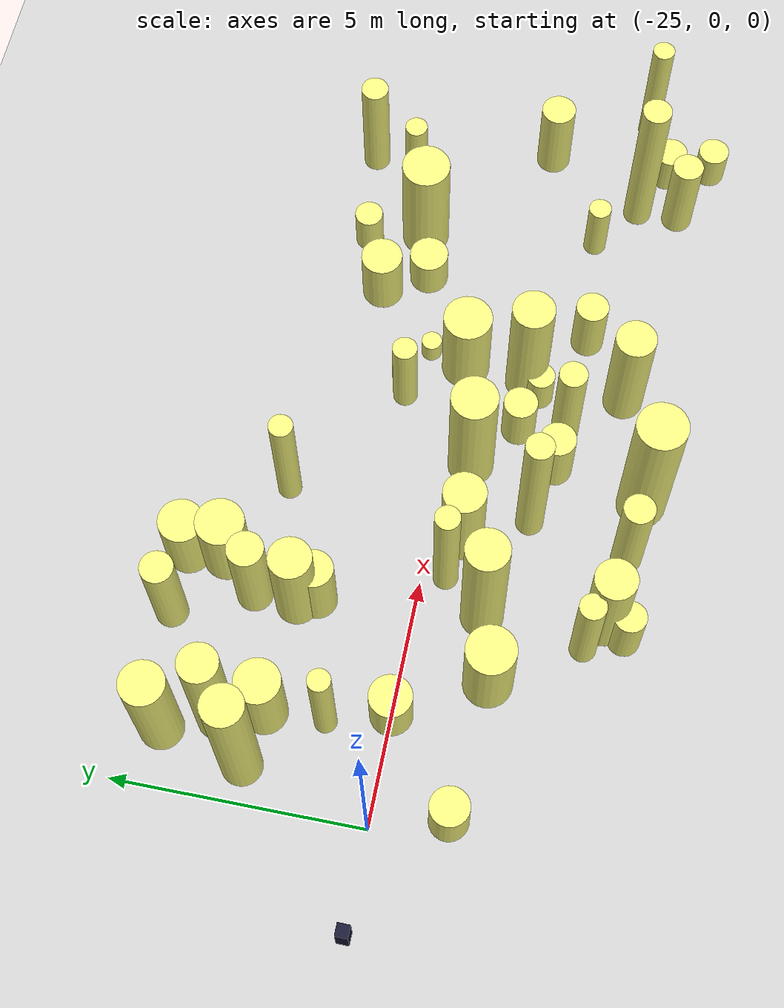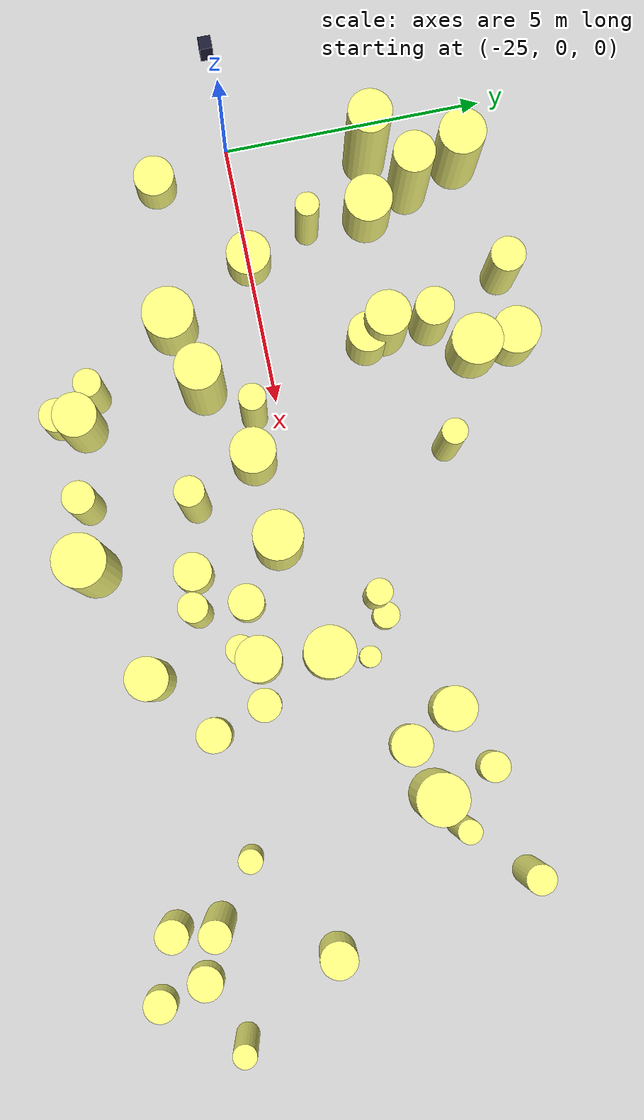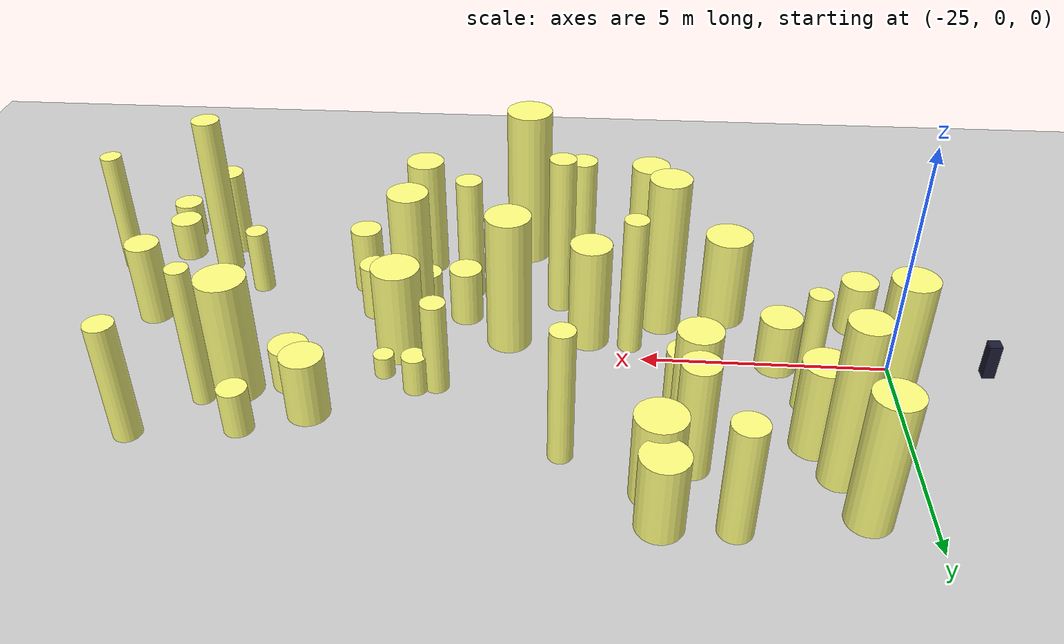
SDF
<sdf version="1.4">
 <world name="default">
  <include><uri>model://ground_plane</uri></include>
  <include><uri>model://sun</uri></include>
  <model name="forest">
   <static>true</static>
   <link name="cylinder1">
    <pose>-17.237339600972607 -0.5002070811042465 1.5118524526197255 0 0 0</pose>
    <visual name="visual">
     <geometry>
      <cylinder><radius>0.46677832788261603</radius><length>3.023704905239451</length></cylinder>
     </geometry>
     <material>
      <ambient>0.6 0.6 0.6 1</ambient>
      <diffuse>1 1 0.5 1</diffuse>
      <specular>0 0 0</specular>
      <emissive>0 0 0 1</emissive>
     </material>
    </visual>
    <collision name="collision">
     <geometry>
      <cylinder><radius>0.46677832788261603</radius><length>3.023704905239451</length></cylinder>
     </geometry>
     <max_contacts>0</max_contacts>
    </collision>
   </link>
   <link name="cylinder5">
    <pose>-20.148803861511887 -3.700949633133399 1.2790488330245817 0 0 0</pose>
    <visual name="visual">
     <geometry>
      <cylinder><radius>0.4170050183967076</radius><length>2.5580976660491634</length></cylinder>
     </geometry>
     <material>
      <ambient>0.6 0.6 0.6 1</ambient>
      <diffuse>1 1 0.5 1</diffuse>
      <specular>0 0 0</specular>
      <emissive>0 0 0 1</emissive>
     </material>
    </visual>
    <collision name="collision">
     <geometry>
      <cylinder><radius>0.4170050183967076</radius><length>2.5580976660491634</length></cylinder>
     </geometry>
     <max_contacts>0</max_contacts>
    </collision>
   </link>
   <link name="cylinder6">
    <pose>-8.282217289233344 -2.8858835329131693 1.393991411430147 0 0 0</pose>
    <visual name="visual">
     <geometry>
      <cylinder><radius>0.2251886929722567</radius><length>2.787982822860294</length></cylinder>
     </geometry>
     <material>
      <ambient>0.6 0.6 0.6 1</ambient>
      <diffuse>1 1 0.5 1</diffuse>
      <specular>0 0 0</specular>
      <emissive>0 0 0 1</emissive>
     </material>
    </visual>
    <collision name="collision">
     <geometry>
      <cylinder><radius>0.2251886929722567</radius><length>2.787982822860294</length></cylinder>
     </geometry>
     <max_contacts>0</max_contacts>
    </collision>
   </link>
   <link name="cylinder8">
    <pose>-18.899742258552887 -0.6405329994121258 1.1736366769516815 0 0 0</pose>
    <visual name="visual">
     <geometry>
      <cylinder><radius>0.4303406056270836</radius><length>2.347273353903363</length></cylinder>
     </geometry>
     <material>
      <ambient>0.6 0.6 0.6 1</ambient>
      <diffuse>1 1 0.5 1</diffuse>
      <specular>0 0 0</specular>
      <emissive>0 0 0 1</emissive>
     </material>
    </visual>
    <collision name="collision">
     <geometry>
      <cylinder><radius>0.4303406056270836</radius><length>2.347273353903363</length></cylinder>
     </geometry>
     <max_contacts>0</max_contacts>
    </collision>
   </link>
   <link name="cylinder15">
    <pose>-12.01330068813229 1.4757289131431541 1.3220157545991622 0 0 0</pose>
    <visual name="visual">
     <geometry>
      <cylinder><radius>0.49491867467201395</radius><length>2.6440315091983244</length></cylinder>
     </geometry>
     <material>
      <ambient>0.6 0.6 0.6 1</ambient>
      <diffuse>1 1 0.5 1</diffuse>
      <specular>0 0 0</specular>
      <emissive>0 0 0 1</emissive>
     </material>
    </visual>
    <collision name="collision">
     <geometry>
      <cylinder><radius>0.49491867467201395</radius><length>2.6440315091983244</length></cylinder>
     </geometry>
     <max_contacts>0</max_contacts>
    </collision>
   </link>
   <link name="cylinder16">
    <pose>-23.48727687036992 3.24876843397006 1.731877221561158 0 0 0</pose>
    <visual name="visual">
     <geometry>
      <cylinder><radius>0.3859166150230648</radius><length>3.463754443122316</length></cylinder>
     </geometry>
     <material>
      <ambient>0.6 0.6 0.6 1</ambient>
      <diffuse>1 1 0.5 1</diffuse>
      <specular>0 0 0</specular>
      <emissive>0 0 0 1</emissive>
     </material>
    </visual>
    <collision name="collision">
     <geometry>
      <cylinder><radius>0.3859166150230648</radius><length>3.463754443122316</length></cylinder>
     </geometry>
     <max_contacts>0</max_contacts>
    </collision>
   </link>
   <link name="cylinder21">
    <pose>-24.537377630705997 -1.4602951554506962 0.5840869932758881 0 0 0</pose>
    <visual name="visual">
     <geometry>
      <cylinder><radius>0.3863408214898202</radius><length>1.1681739865517762</length></cylinder>
     </geometry>
     <material>
      <ambient>0.6 0.6 0.6 1</ambient>
      <diffuse>1 1 0.5 1</diffuse>
      <specular>0 0 0</specular>
      <emissive>0 0 0 1</emissive>
     </material>
    </visual>
    <collision name="collision">
     <geometry>
      <cylinder><radius>0.3863408214898202</radius><length>1.1681739865517762</length></cylinder>
     </geometry>
     <max_contacts>0</max_contacts>
    </collision>
   </link>
   <link name="cylinder22">
    <pose>-21.75738890126337 -1.6847261504267097 1.016730140741591 0 0 0</pose>
    <visual name="visual">
     <geometry>
      <cylinder><radius>0.4917726904729416</radius><length>2.033460281483182</length></cylinder>
     </geometry>
     <material>
      <ambient>0.6 0.6 0.6 1</ambient>
      <diffuse>1 1 0.5 1</diffuse>
      <specular>0 0 0</specular>
      <emissive>0 0 0 1</emissive>
     </material>
    </visual>
    <collision name="collision">
     <geometry>
      <cylinder><radius>0.4917726904729416</radius><length>2.033460281483182</length></cylinder>
     </geometry>
     <max_contacts>0</max_contacts>
    </collision>
   </link>
   <link name="cylinder23">
    <pose>-15.410332753393396 -1.5987368802015167 0.46426440466343477 0 0 0</pose>
    <visual name="visual">
     <geometry>
      <cylinder><radius>0.2857012675479296</radius><length>0.9285288093268695</length></cylinder>
     </geometry>
     <material>
      <ambient>0.6 0.6 0.6 1</ambient>
      <diffuse>1 1 0.5 1</diffuse>
      <specular>0 0 0</specular>
      <emissive>0 0 0 1</emissive>
     </material>
    </visual>
    <collision name="collision">
     <geometry>
      <cylinder><radius>0.2857012675479296</radius><length>0.9285288093268695</length></cylinder>
     </geometry>
     <max_contacts>0</max_contacts>
    </collision>
   </link>
   <link name="cylinder24">
    <pose>-18.463321688392135 2.998894901509825 1.4334425518272613 0 0 0</pose>
    <visual name="visual">
     <geometry>
      <cylinder><radius>0.24127743343678415</radius><length>2.8668851036545226</length></cylinder>
     </geometry>
     <material>
      <ambient>0.6 0.6 0.6 1</ambient>
      <diffuse>1 1 0.5 1</diffuse>
      <specular>0 0 0</specular>
      <emissive>0 0 0 1</emissive>
     </material>
    </visual>
    <collision name="collision">
     <geometry>
      <cylinder><radius>0.24127743343678415</radius><length>2.8668851036545226</length></cylinder>
     </geometry>
     <max_contacts>0</max_contacts>
    </collision>
   </link>
   <link name="cylinder25">
    <pose>-14.300868841691312 -1.3497583953102374 0.6158416776750282 0 0 0</pose>
    <visual name="visual">
     <geometry>
      <cylinder><radius>0.32138493862074013</radius><length>1.2316833553500564</length></cylinder>
     </geometry>
     <material>
      <ambient>0.6 0.6 0.6 1</ambient>
      <diffuse>1 1 0.5 1</diffuse>
      <specular>0 0 0</specular>
      <emissive>0 0 0 1</emissive>
     </material>
    </visual>
    <collision name="collision">
     <geometry>
      <cylinder><radius>0.32138493862074013</radius><length>1.2316833553500564</length></cylinder>
     </geometry>
     <max_contacts>0</max_contacts>
    </collision>
   </link>
   <link name="cylinder27">
    <pose>-11.537661089453561 -2.1665147095185358 0.7244477340062326 0 0 0</pose>
    <visual name="visual">
     <geometry>
      <cylinder><radius>0.23354316422735868</radius><length>1.4488954680124653</length></cylinder>
     </geometry>
     <material>
      <ambient>0.6 0.6 0.6 1</ambient>
      <diffuse>1 1 0.5 1</diffuse>
      <specular>0 0 0</specular>
      <emissive>0 0 0 1</emissive>
     </material>
    </visual>
    <collision name="collision">
     <geometry>
      <cylinder><radius>0.23354316422735868</radius><length>1.4488954680124653</length></cylinder>
     </geometry>
     <max_contacts>0</max_contacts>
    </collision>
   </link>
   <link name="cylinder38">
    <pose>-11.38642349813843 1.8052967436921499 1.5200985591942313 0 0 0</pose>
    <visual name="visual">
     <geometry>
      <cylinder><radius>0.22462556854759153</radius><length>3.0401971183884626</length></cylinder>
     </geometry>
     <material>
      <ambient>0.6 0.6 0.6 1</ambient>
      <diffuse>1 1 0.5 1</diffuse>
      <specular>0 0 0</specular>
      <emissive>0 0 0 1</emissive>
     </material>
    </visual>
    <collision name="collision">
     <geometry>
      <cylinder><radius>0.22462556854759153</radius><length>3.0401971183884626</length></cylinder>
     </geometry>
     <max_contacts>0</max_contacts>
    </collision>
   </link>
   <link name="cylinder45">
    <pose>-17.436922142166374 -4.038939459190089 1.8130169733389931 0 0 0</pose>
    <visual name="visual">
     <geometry>
      <cylinder><radius>0.498983910959908</radius><length>3.6260339466779863</length></cylinder>
     </geometry>
     <material>
      <ambient>0.6 0.6 0.6 1</ambient>
      <diffuse>1 1 0.5 1</diffuse>
      <specular>0 0 0</specular>
      <emissive>0 0 0 1</emissive>
     </material>
    </visual>
    <collision name="collision">
     <geometry>
      <cylinder><radius>0.498983910959908</radius><length>3.6260339466779863</length></cylinder>
     </geometry>
     <max_contacts>0</max_contacts>
    </collision>
   </link>
   <link name="cylinder47">
    <pose>-9.488001945957015 -0.9172338314719717 0.9083555281805161 0 0 0</pose>
    <visual name="visual">
     <geometry>
      <cylinder><radius>0.3570390345416714</radius><length>1.8167110563610323</length></cylinder>
     </geometry>
     <material>
      <ambient>0.6 0.6 0.6 1</ambient>
      <diffuse>1 1 0.5 1</diffuse>
      <specular>0 0 0</specular>
      <emissive>0 0 0 1</emissive>
     </material>
    </visual>
    <collision name="collision">
     <geometry>
      <cylinder><radius>0.3570390345416714</radius><length>1.8167110563610323</length></cylinder>
     </geometry>
     <max_contacts>0</max_contacts>
    </collision>
   </link>
   <link name="cylinder48">
    <pose>-9.19745577396438 -4.3574099252883824 0.4262601787624855 0 0 0</pose>
    <visual name="visual">
     <geometry>
      <cylinder><radius>0.3205312203798536</radius><length>0.852520357524971</length></cylinder>
     </geometry>
     <material>
      <ambient>0.6 0.6 0.6 1</ambient>
      <diffuse>1 1 0.5 1</diffuse>
      <specular>0 0 0</specular>
      <emissive>0 0 0 1</emissive>
     </material>
    </visual>
    <collision name="collision">
     <geometry>
      <cylinder><radius>0.3205312203798536</radius><length>0.852520357524971</length></cylinder>
     </geometry>
     <max_contacts>0</max_contacts>
    </collision>
   </link>
   <link name="cylinder50">
    <pose>-20.8830408254851 2.283387764054501 1.2281981433649296 0 0 0</pose>
    <visual name="visual">
     <geometry>
      <cylinder><radius>0.42596792324083055</radius><length>2.456396286729859</length></cylinder>
     </geometry>
     <material>
      <ambient>0.6 0.6 0.6 1</ambient>
      <diffuse>1 1 0.5 1</diffuse>
      <specular>0 0 0</specular>
      <emissive>0 0 0 1</emissive>
     </material>
    </visual>
    <collision name="collision">
     <geometry>
      <cylinder><radius>0.42596792324083055</radius><length>2.456396286729859</length></cylinder>
     </geometry>
     <max_contacts>0</max_contacts>
    </collision>
   </link>
   <link name="cylinder57">
    <pose>-15.513438105112614 1.2278613242603136 0.40785494889892826 0 0 0</pose>
    <visual name="visual">
     <geometry>
      <cylinder><radius>0.25544507673638867</radius><length>0.8157098977978565</length></cylinder>
     </geometry>
     <material>
      <ambient>0.6 0.6 0.6 1</ambient>
      <diffuse>1 1 0.5 1</diffuse>
      <specular>0 0 0</specular>
      <emissive>0 0 0 1</emissive>
     </material>
    </visual>
    <collision name="collision">
     <geometry>
      <cylinder><radius>0.25544507673638867</radius><length>0.8157098977978565</length></cylinder>
     </geometry>
     <max_contacts>0</max_contacts>
    </collision>
   </link>
   <link name="cylinder58">
    <pose>-14.810555365355022 0.7895955618574657 0.24189875727437865 0 0 0</pose>
    <visual name="visual">
     <geometry>
      <cylinder><radius>0.20906370584355957</radius><length>0.4837975145487573</length></cylinder>
     </geometry>
     <material>
      <ambient>0.6 0.6 0.6 1</ambient>
      <diffuse>1 1 0.5 1</diffuse>
      <specular>0 0 0</specular>
      <emissive>0 0 0 1</emissive>
     </material>
    </visual>
    <collision name="collision">
     <geometry>
      <cylinder><radius>0.20906370584355957</radius><length>0.4837975145487573</length></cylinder>
     </geometry>
     <max_contacts>0</max_contacts>
    </collision>
   </link>
   <link name="cylinder59">
    <pose>-24.262080580485474 2.5780756254650044 1.9414825914702964 0 0 0</pose>
    <visual name="visual">
     <geometry>
      <cylinder><radius>0.4035563122428887</radius><length>3.882965182940593</length></cylinder>
     </geometry>
     <material>
      <ambient>0.6 0.6 0.6 1</ambient>
      <diffuse>1 1 0.5 1</diffuse>
      <specular>0 0 0</specular>
      <emissive>0 0 0 1</emissive>
     </material>
    </visual>
    <collision name="collision">
     <geometry>
      <cylinder><radius>0.4035563122428887</radius><length>3.882965182940593</length></cylinder>
     </geometry>
     <max_contacts>0</max_contacts>
    </collision>
   </link>
   <link name="cylinder62">
    <pose>-20.72868564199508 1.9059651147502112 0.8606134711768242 0 0 0</pose>
    <visual name="visual">
     <geometry>
      <cylinder><radius>0.3852916599648989</radius><length>1.7212269423536484</length></cylinder>
     </geometry>
     <material>
      <ambient>0.6 0.6 0.6 1</ambient>
      <diffuse>1 1 0.5 1</diffuse>
      <specular>0 0 0</specular>
      <emissive>0 0 0 1</emissive>
     </material>
    </visual>
    <collision name="collision">
     <geometry>
      <cylinder><radius>0.3852916599648989</radius><length>1.7212269423536484</length></cylinder>
     </geometry>
     <max_contacts>0</max_contacts>
    </collision>
   </link>
   <link name="cylinder63">
    <pose>-15.022772718436128 0.02190572271629243 1.035968711681472 0 0 0</pose>
    <visual name="visual">
     <geometry>
      <cylinder><radius>0.4952670084634616</radius><length>2.071937423362944</length></cylinder>
     </geometry>
     <material>
      <ambient>0.6 0.6 0.6 1</ambient>
      <diffuse>1 1 0.5 1</diffuse>
      <specular>0 0 0</specular>
      <emissive>0 0 0 1</emissive>
     </material>
    </visual>
    <collision name="collision">
     <geometry>
      <cylinder><radius>0.4952670084634616</radius><length>2.071937423362944</length></cylinder>
     </geometry>
     <max_contacts>0</max_contacts>
    </collision>
   </link>
   <link name="cylinder64">
    <pose>-13.54979081818583 2.1038303310756623 0.6987976968159539 0 0 0</pose>
    <visual name="visual">
     <geometry>
      <cylinder><radius>0.42614444110148797</radius><length>1.3975953936319079</length></cylinder>
     </geometry>
     <material>
      <ambient>0.6 0.6 0.6 1</ambient>
      <diffuse>1 1 0.5 1</diffuse>
      <specular>0 0 0</specular>
      <emissive>0 0 0 1</emissive>
     </material>
    </visual>
    <collision name="collision">
     <geometry>
      <cylinder><radius>0.42614444110148797</radius><length>1.3975953936319079</length></cylinder>
     </geometry>
     <max_contacts>0</max_contacts>
    </collision>
   </link>
   <link name="cylinder67">
    <pose>-20.42855529650008 -1.3215768000717576 1.7597092344462273 0 0 0</pose>
    <visual name="visual">
     <geometry>
      <cylinder><radius>0.42798806121495264</radius><length>3.5194184688924546</length></cylinder>
     </geometry>
     <material>
      <ambient>0.6 0.6 0.6 1</ambient>
      <diffuse>1 1 0.5 1</diffuse>
      <specular>0 0 0</specular>
      <emissive>0 0 0 1</emissive>
     </material>
    </visual>
    <collision name="collision">
     <geometry>
      <cylinder><radius>0.42798806121495264</radius><length>3.5194184688924546</length></cylinder>
     </geometry>
     <max_contacts>0</max_contacts>
    </collision>
   </link>
   <link name="cylinder69">
    <pose>-18.26102557763499 -1.8956662297669413 1.7904086044783356 0 0 0</pose>
    <visual name="visual">
     <geometry>
      <cylinder><radius>0.2803412955227197</radius><length>3.580817208956671</length></cylinder>
     </geometry>
     <material>
      <ambient>0.6 0.6 0.6 1</ambient>
      <diffuse>1 1 0.5 1</diffuse>
      <specular>0 0 0</specular>
      <emissive>0 0 0 1</emissive>
     </material>
    </visual>
    <collision name="collision">
     <geometry>
      <cylinder><radius>0.2803412955227197</radius><length>3.580817208956671</length></cylinder>
     </geometry>
     <max_contacts>0</max_contacts>
    </collision>
   </link>
   <link name="cylinder74">
    <pose>-20.702714968685665 -3.374078118057521 1.2034732354549333 0 0 0</pose>
    <visual name="visual">
     <geometry>
      <cylinder><radius>0.2649725305576209</radius><length>2.4069464709098667</length></cylinder>
     </geometry>
     <material>
      <ambient>0.6 0.6 0.6 1</ambient>
      <diffuse>1 1 0.5 1</diffuse>
      <specular>0 0 0</specular>
      <emissive>0 0 0 1</emissive>
     </material>
    </visual>
    <collision name="collision">
     <geometry>
      <cylinder><radius>0.2649725305576209</radius><length>2.4069464709098667</length></cylinder>
     </geometry>
     <max_contacts>0</max_contacts>
    </collision>
   </link>
   <link name="cylinder79">
    <pose>-13.024787491578005 1.2041272170164259 0.4677098413487476 0 0 0</pose>
    <visual name="visual">
     <geometry>
      <cylinder><radius>0.4015944960963625</radius><length>0.9354196826974952</length></cylinder>
     </geometry>
     <material>
      <ambient>0.6 0.6 0.6 1</ambient>
      <diffuse>1 1 0.5 1</diffuse>
      <specular>0 0 0</specular>
      <emissive>0 0 0 1</emissive>
     </material>
    </visual>
    <collision name="collision">
     <geometry>
      <cylinder><radius>0.4015944960963625</radius><length>0.9354196826974952</length></cylinder>
     </geometry>
     <max_contacts>0</max_contacts>
    </collision>
   </link>
   <link name="cylinder87">
    <pose>-16.26666148262814 -2.25384628900244 1.412215279742914 0 0 0</pose>
    <visual name="visual">
     <geometry>
      <cylinder><radius>0.28164025120095043</radius><length>2.824430559485828</length></cylinder>
     </geometry>
     <material>
      <ambient>0.6 0.6 0.6 1</ambient>
      <diffuse>1 1 0.5 1</diffuse>
      <specular>0 0 0</specular>
      <emissive>0 0 0 1</emissive>
     </material>
    </visual>
    <collision name="collision">
     <geometry>
      <cylinder><radius>0.28164025120095043</radius><length>2.824430559485828</length></cylinder>
     </geometry>
     <max_contacts>0</max_contacts>
    </collision>
   </link>
   <link name="cylinder90">
    <pose>-10.532033987073264 -2.9527083027959278 1.84859485989253 0 0 0</pose>
    <visual name="visual">
     <geometry>
      <cylinder><radius>0.29614039734662145</radius><length>3.69718971978506</length></cylinder>
     </geometry>
     <material>
      <ambient>0.6 0.6 0.6 1</ambient>
      <diffuse>1 1 0.5 1</diffuse>
      <specular>0 0 0</specular>
      <emissive>0 0 0 1</emissive>
     </material>
    </visual>
    <collision name="collision">
     <geometry>
      <cylinder><radius>0.29614039734662145</radius><length>3.69718971978506</length></cylinder>
     </geometry>
     <max_contacts>0</max_contacts>
    </collision>
   </link>
   <link name="cylinder91">
    <pose>-20.18647978559659 3.86256286819399 0.9064808167688275 0 0 0</pose>
    <visual name="visual">
     <geometry>
      <cylinder><radius>0.48608008045811496</radius><length>1.812961633537655</length></cylinder>
     </geometry>
     <material>
      <ambient>0.6 0.6 0.6 1</ambient>
      <diffuse>1 1 0.5 1</diffuse>
      <specular>0 0 0</specular>
      <emissive>0 0 0 1</emissive>
     </material>
    </visual>
    <collision name="collision">
     <geometry>
      <cylinder><radius>0.48608008045811496</radius><length>1.812961633537655</length></cylinder>
     </geometry>
     <max_contacts>0</max_contacts>
    </collision>
   </link>
   <link name="cylinder101">
    <pose>-15.92119769540748 1.1290806522948236 1.009852806789928 0 0 0</pose>
    <visual name="visual">
     <geometry>
      <cylinder><radius>0.2515112147015409</radius><length>2.019705613579856</length></cylinder>
     </geometry>
     <material>
      <ambient>0.6 0.6 0.6 1</ambient>
      <diffuse>1 1 0.5 1</diffuse>
      <specular>0 0 0</specular>
      <emissive>0 0 0 1</emissive>
     </material>
    </visual>
    <collision name="collision">
     <geometry>
      <cylinder><radius>0.2515112147015409</radius><length>2.019705613579856</length></cylinder>
     </geometry>
     <max_contacts>0</max_contacts>
    </collision>
   </link>
   <link name="cylinder103">
    <pose>-10.518408458292484 -3.8152176393624604 0.991286415276953 0 0 0</pose>
    <visual name="visual">
     <geometry>
      <cylinder><radius>0.31840951966417796</radius><length>1.982572830553906</length></cylinder>
     </geometry>
     <material>
      <ambient>0.6 0.6 0.6 1</ambient>
      <diffuse>1 1 0.5 1</diffuse>
      <specular>0 0 0</specular>
      <emissive>0 0 0 1</emissive>
     </material>
    </visual>
    <collision name="collision">
     <geometry>
      <cylinder><radius>0.31840951966417796</radius><length>1.982572830553906</length></cylinder>
     </geometry>
     <max_contacts>0</max_contacts>
    </collision>
   </link>
   <link name="cylinder104">
    <pose>-23.84626631465247 4.25785912618035 1.3974909009004357 0 0 0</pose>
    <visual name="visual">
     <geometry>
      <cylinder><radius>0.4378691169551894</radius><length>2.7949818018008714</length></cylinder>
     </geometry>
     <material>
      <ambient>0.6 0.6 0.6 1</ambient>
      <diffuse>1 1 0.5 1</diffuse>
      <specular>0 0 0</specular>
      <emissive>0 0 0 1</emissive>
     </material>
    </visual>
    <collision name="collision">
     <geometry>
      <cylinder><radius>0.4378691169551894</radius><length>2.7949818018008714</length></cylinder>
     </geometry>
     <max_contacts>0</max_contacts>
    </collision>
   </link>
   <link name="cylinder105">
    <pose>-9.451647611125018 -3.4466043328330076 0.46072299383934673 0 0 0</pose>
    <visual name="visual">
     <geometry>
      <cylinder><radius>0.34380153850922013</radius><length>0.9214459876786935</length></cylinder>
     </geometry>
     <material>
      <ambient>0.6 0.6 0.6 1</ambient>
      <diffuse>1 1 0.5 1</diffuse>
      <specular>0 0 0</specular>
      <emissive>0 0 0 1</emissive>
     </material>
    </visual>
    <collision name="collision">
     <geometry>
      <cylinder><radius>0.34380153850922013</radius><length>0.9214459876786935</length></cylinder>
     </geometry>
     <max_contacts>0</max_contacts>
    </collision>
   </link>
   <link name="cylinder106">
    <pose>-10.26599225197678 2.920889528693448 1.2747563699572066 0 0 0</pose>
    <visual name="visual">
     <geometry>
      <cylinder><radius>0.2818114457362484</radius><length>2.5495127399144133</length></cylinder>
     </geometry>
     <material>
      <ambient>0.6 0.6 0.6 1</ambient>
      <diffuse>1 1 0.5 1</diffuse>
      <specular>0 0 0</specular>
      <emissive>0 0 0 1</emissive>
     </material>
    </visual>
    <collision name="collision">
     <geometry>
      <cylinder><radius>0.2818114457362484</radius><length>2.5495127399144133</length></cylinder>
     </geometry>
     <max_contacts>0</max_contacts>
    </collision>
   </link>
   <link name="cylinder112">
    <pose>-23.116191926030936 1.2162240398397426 1.3011511297495622 0 0 0</pose>
    <visual name="visual">
     <geometry>
      <cylinder><radius>0.22463031574243975</radius><length>2.6023022594991243</length></cylinder>
     </geometry>
     <material>
      <ambient>0.6 0.6 0.6 1</ambient>
      <diffuse>1 1 0.5 1</diffuse>
      <specular>0 0 0</specular>
      <emissive>0 0 0 1</emissive>
     </material>
    </visual>
    <collision name="collision">
     <geometry>
      <cylinder><radius>0.22463031574243975</radius><length>2.6023022594991243</length></cylinder>
     </geometry>
     <max_contacts>0</max_contacts>
    </collision>
   </link>
   <link name="cylinder114">
    <pose>-22.73247851326713 0.011041456273403583 0.6061135294916187 0 0 0</pose>
    <visual name="visual">
     <geometry>
      <cylinder><radius>0.4231874751681524</radius><length>1.2122270589832373</length></cylinder>
     </geometry>
     <material>
      <ambient>0.6 0.6 0.6 1</ambient>
      <diffuse>1 1 0.5 1</diffuse>
      <specular>0 0 0</specular>
      <emissive>0 0 0 1</emissive>
     </material>
    </visual>
    <collision name="collision">
     <geometry>
      <cylinder><radius>0.4231874751681524</radius><length>1.2122270589832373</length></cylinder>
     </geometry>
     <max_contacts>0</max_contacts>
    </collision>
   </link>
   <link name="cylinder117">
    <pose>-20.377751913099257 -4.128472595876503 0.6963758447836077 0 0 0</pose>
    <visual name="visual">
     <geometry>
      <cylinder><radius>0.31979047527788107</radius><length>1.3927516895672154</length></cylinder>
     </geometry>
     <material>
      <ambient>0.6 0.6 0.6 1</ambient>
      <diffuse>1 1 0.5 1</diffuse>
      <specular>0 0 0</specular>
      <emissive>0 0 0 1</emissive>
     </material>
    </visual>
    <collision name="collision">
     <geometry>
      <cylinder><radius>0.31979047527788107</radius><length>1.3927516895672154</length></cylinder>
     </geometry>
     <max_contacts>0</max_contacts>
    </collision>
   </link>
   <link name="cylinder120">
    <pose>-20.236775742220626 4.6404856122785265 0.8113758363248045 0 0 0</pose>
    <visual name="visual">
     <geometry>
      <cylinder><radius>0.45172953368625834</radius><length>1.622751672649609</length></cylinder>
     </geometry>
     <material>
      <ambient>0.6 0.6 0.6 1</ambient>
      <diffuse>1 1 0.5 1</diffuse>
      <specular>0 0 0</specular>
      <emissive>0 0 0 1</emissive>
     </material>
    </visual>
    <collision name="collision">
     <geometry>
      <cylinder><radius>0.45172953368625834</radius><length>1.622751672649609</length></cylinder>
     </geometry>
     <max_contacts>0</max_contacts>
    </collision>
   </link>
   <link name="cylinder122">
    <pose>-13.93603166457647 -2.379197519848791 0.7381478816520344 0 0 0</pose>
    <visual name="visual">
     <geometry>
      <cylinder><radius>0.3354372229674157</radius><length>1.4762957633040688</length></cylinder>
     </geometry>
     <material>
      <ambient>0.6 0.6 0.6 1</ambient>
      <diffuse>1 1 0.5 1</diffuse>
      <specular>0 0 0</specular>
      <emissive>0 0 0 1</emissive>
     </material>
    </visual>
    <collision name="collision">
     <geometry>
      <cylinder><radius>0.3354372229674157</radius><length>1.4762957633040688</length></cylinder>
     </geometry>
     <max_contacts>0</max_contacts>
    </collision>
   </link>
   <link name="cylinder125">
    <pose>-16.25469874310167 -1.3098163579453015 0.6179294784570476 0 0 0</pose>
    <visual name="visual">
     <geometry>
      <cylinder><radius>0.3466087295417602</radius><length>1.2358589569140952</length></cylinder>
     </geometry>
     <material>
      <ambient>0.6 0.6 0.6 1</ambient>
      <diffuse>1 1 0.5 1</diffuse>
      <specular>0 0 0</specular>
      <emissive>0 0 0 1</emissive>
     </material>
    </visual>
    <collision name="collision">
     <geometry>
      <cylinder><radius>0.3466087295417602</radius><length>1.2358589569140952</length></cylinder>
     </geometry>
     <max_contacts>0</max_contacts>
    </collision>
   </link>
   <link name="cylinder126">
    <pose>-16.99544864072434 -2.1812538812971205 0.7099694590299761 0 0 0</pose>
    <visual name="visual">
     <geometry>
      <cylinder><radius>0.3659275644742106</radius><length>1.4199389180599522</length></cylinder>
     </geometry>
     <material>
      <ambient>0.6 0.6 0.6 1</ambient>
      <diffuse>1 1 0.5 1</diffuse>
      <specular>0 0 0</specular>
      <emissive>0 0 0 1</emissive>
     </material>
    </visual>
    <collision name="collision">
     <geometry>
      <cylinder><radius>0.3659275644742106</radius><length>1.4199389180599522</length></cylinder>
     </geometry>
     <max_contacts>0</max_contacts>
    </collision>
   </link>
   <link name="cylinder128">
    <pose>-15.128985407784572 -1.2752585326284582 1.5146067769657363 0 0 0</pose>
    <visual name="visual">
     <geometry>
      <cylinder><radius>0.4264318362591079</radius><length>3.0292135539314726</length></cylinder>
     </geometry>
     <material>
      <ambient>0.6 0.6 0.6 1</ambient>
      <diffuse>1 1 0.5 1</diffuse>
      <specular>0 0 0</specular>
      <emissive>0 0 0 1</emissive>
     </material>
    </visual>
    <collision name="collision">
     <geometry>
      <cylinder><radius>0.4264318362591079</radius><length>3.0292135539314726</length></cylinder>
     </geometry>
     <max_contacts>0</max_contacts>
    </collision>
   </link>
   <link name="cylinder129">
    <pose>-20.849634714011863 3.1485237983533807 1.2004846227107913 0 0 0</pose>
    <visual name="visual">
     <geometry>
      <cylinder><radius>0.3608588489753617</radius><length>2.4009692454215825</length></cylinder>
     </geometry>
     <material>
      <ambient>0.6 0.6 0.6 1</ambient>
      <diffuse>1 1 0.5 1</diffuse>
      <specular>0 0 0</specular>
      <emissive>0 0 0 1</emissive>
     </material>
    </visual>
    <collision name="collision">
     <geometry>
      <cylinder><radius>0.3608588489753617</radius><length>2.4009692454215825</length></cylinder>
     </geometry>
     <max_contacts>0</max_contacts>
    </collision>
   </link>
   <link name="cylinder134">
    <pose>-21.526636931145106 4.6652760594249685 1.1998209008192098 0 0 0</pose>
    <visual name="visual">
     <geometry>
      <cylinder><radius>0.3271210908703329</radius><length>2.3996418016384196</length></cylinder>
     </geometry>
     <material>
      <ambient>0.6 0.6 0.6 1</ambient>
      <diffuse>1 1 0.5 1</diffuse>
      <specular>0 0 0</specular>
      <emissive>0 0 0 1</emissive>
     </material>
    </visual>
    <collision name="collision">
     <geometry>
      <cylinder><radius>0.3271210908703329</radius><length>2.3996418016384196</length></cylinder>
     </geometry>
     <max_contacts>0</max_contacts>
    </collision>
   </link>
   <link name="cylinder142">
    <pose>-19.765246877281434 -0.4691812988101631 1.5248918374463059 0 0 0</pose>
    <visual name="visual">
     <geometry>
      <cylinder><radius>0.25057141176356723</radius><length>3.0497836748926117</length></cylinder>
     </geometry>
     <material>
      <ambient>0.6 0.6 0.6 1</ambient>
      <diffuse>1 1 0.5 1</diffuse>
      <specular>0 0 0</specular>
      <emissive>0 0 0 1</emissive>
     </material>
    </visual>
    <collision name="collision">
     <geometry>
      <cylinder><radius>0.25057141176356723</radius><length>3.0497836748926117</length></cylinder>
     </geometry>
     <max_contacts>0</max_contacts>
    </collision>
   </link>
   <link name="cylinder143">
    <pose>-18.654920806448388 -3.920272227190277 1.2548445472550176 0 0 0</pose>
    <visual name="visual">
     <geometry>
      <cylinder><radius>0.31073549895363456</radius><length>2.509689094510035</length></cylinder>
     </geometry>
     <material>
      <ambient>0.6 0.6 0.6 1</ambient>
      <diffuse>1 1 0.5 1</diffuse>
      <specular>0 0 0</specular>
      <emissive>0 0 0 1</emissive>
     </material>
    </visual>
    <collision name="collision">
     <geometry>
      <cylinder><radius>0.31073549895363456</radius><length>2.509689094510035</length></cylinder>
     </geometry>
     <max_contacts>0</max_contacts>
    </collision>
   </link>
   <link name="cylinder144">
    <pose>-23.156562118414705 2.3963761625748825 0.974404025900556 0 0 0</pose>
    <visual name="visual">
     <geometry>
      <cylinder><radius>0.45063717019284477</radius><length>1.948808051801112</length></cylinder>
     </geometry>
     <material>
      <ambient>0.6 0.6 0.6 1</ambient>
      <diffuse>1 1 0.5 1</diffuse>
      <specular>0 0 0</specular>
      <emissive>0 0 0 1</emissive>
     </material>
    </visual>
    <collision name="collision">
     <geometry>
      <cylinder><radius>0.45063717019284477</radius><length>1.948808051801112</length></cylinder>
     </geometry>
     <max_contacts>0</max_contacts>
    </collision>
   </link>
   <link name="cylinder146">
    <pose>-12.328309567008017 2.6468077258236145 0.493925435706404 0 0 0</pose>
    <visual name="visual">
     <geometry>
      <cylinder><radius>0.2941019963781905</radius><length>0.987850871412808</length></cylinder>
     </geometry>
     <material>
      <ambient>0.6 0.6 0.6 1</ambient>
      <diffuse>1 1 0.5 1</diffuse>
      <specular>0 0 0</specular>
      <emissive>0 0 0 1</emissive>
     </material>
    </visual>
    <collision name="collision">
     <geometry>
      <cylinder><radius>0.2941019963781905</radius><length>0.987850871412808</length></cylinder>
     </geometry>
     <max_contacts>0</max_contacts>
    </collision>
   </link>
   <link name="cylinder147">
    <pose>-15.182005554655648 -3.326553019116255 1.3445905765369457 0 0 0</pose>
    <visual name="visual">
     <geometry>
      <cylinder><radius>0.40794031448808143</radius><length>2.6891811530738914</length></cylinder>
     </geometry>
     <material>
      <ambient>0.6 0.6 0.6 1</ambient>
      <diffuse>1 1 0.5 1</diffuse>
      <specular>0 0 0</specular>
      <emissive>0 0 0 1</emissive>
     </material>
    </visual>
    <collision name="collision">
     <geometry>
      <cylinder><radius>0.40794031448808143</radius><length>2.6891811530738914</length></cylinder>
     </geometry>
     <max_contacts>0</max_contacts>
    </collision>
   </link>
   <link name="cube3">
    <pose>-27.0 0.0 0.25 0 0 0</pose>
    <visual name="visual">
     <geometry><box><size>0.25 0.25 1.0</size></box></geometry>
     <material>
      <ambient>0.1 0.1 0.1 1</ambient>
      <diffuse>0.1 0.1 0.2 1</diffuse>
      <specular>0 0 0</specular>
      <emissive>0 0 0 1</emissive>
     </material>
    </visual>
    <collision name="collision">
     <geometry><box><size>0.25 0.25 1.0</size></box></geometry>
     <max_contacts>0</max_contacts>
    </collision>
   </link>
  </model>
 </world>
</sdf>
